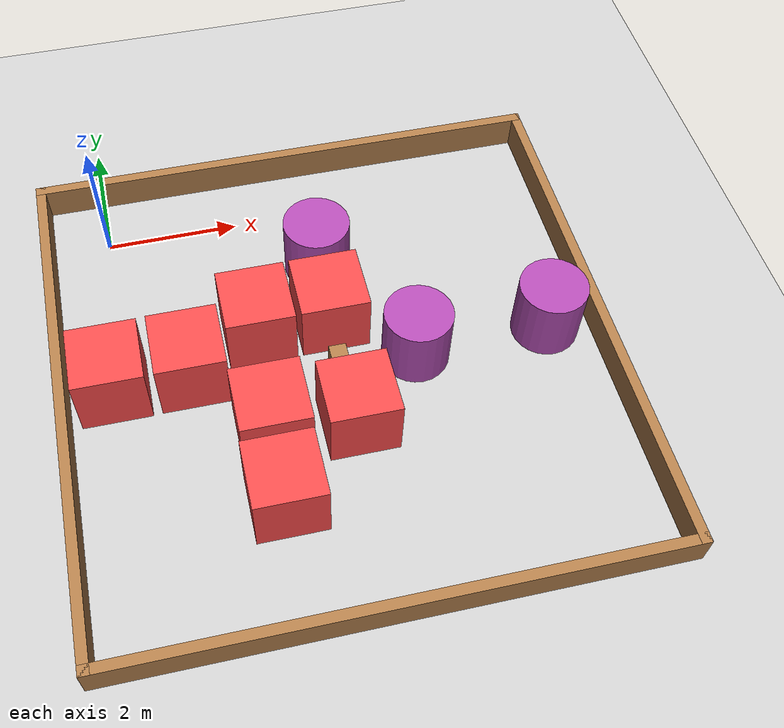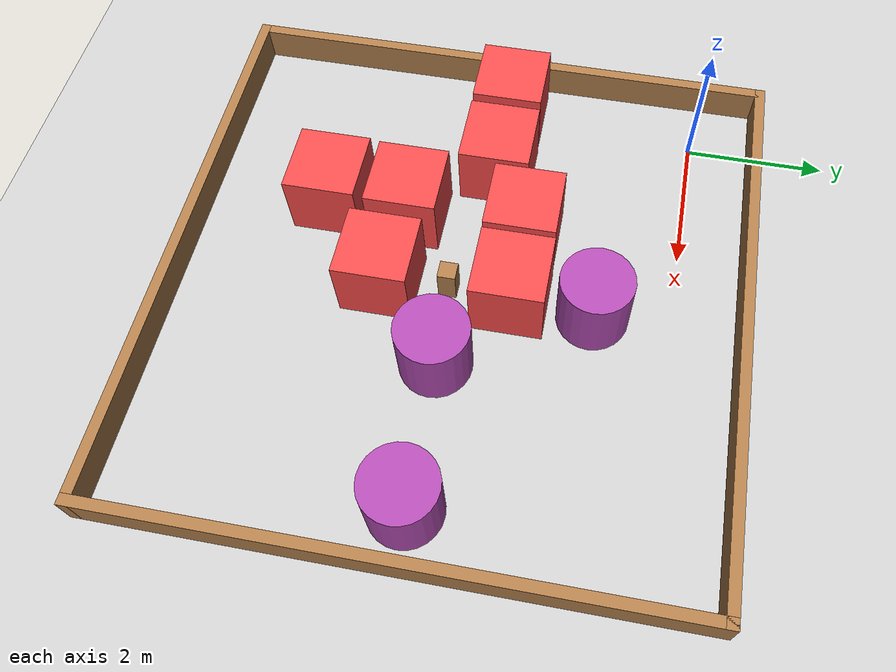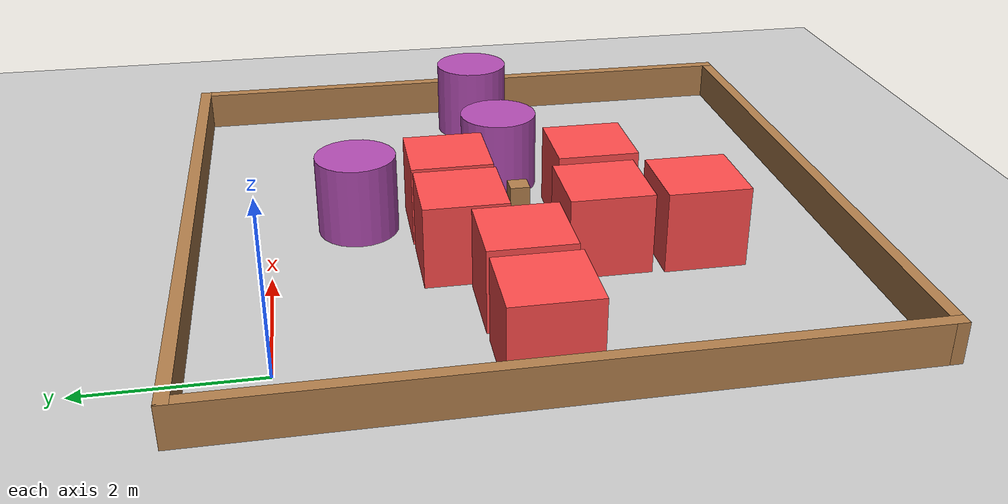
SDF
<sdf version="1.7">
 <world name="default">
  <light name="sun" type="directional">
   <pose>0 0 10 0 -0 0</pose>
   <diffuse>0.8 0.8 0.8 1</diffuse>
   <specular>0.2 0.2 0.2 1</specular>
   <attenuation>
    <range>1000</range>
    <constant>0.9</constant>
    <linear>0.01</linear>
    <quadratic>0.001</quadratic>
   </attenuation>
   <direction>-0.5 0.1 -0.9</direction>
   <spot><inner_angle>0</inner_angle><outer_angle>0</outer_angle><falloff>0</falloff></spot>
  </light>
  <model name="ground_plane">
   <static>1</static>
   <link name="link">
    <collision name="collision">
     <geometry><plane><normal>0 0 1</normal><size>100 100</size></plane></geometry>
     <surface>
      <contact><collide_bitmask>65535</collide_bitmask></contact>
      <friction><ode><mu>100</mu><mu2>50</mu2></ode></friction>
     </surface>
    </collision>
    <visual name="visual">
     <cast_shadows>0</cast_shadows>
     <geometry><plane><normal>0 0 1</normal><size>100 100</size></plane></geometry>
     <material>
      <script><uri>file://media/materials/scripts/gazebo.material</uri><name>Gazebo/Grey</name></script>
     </material>
    </visual>
   </link>
  </model>
  <gravity>0 0 -9.8</gravity>
  <magnetic_field>6e-06 2.3e-05 -4.2e-05</magnetic_field>
  <atmosphere type="adiabatic"/>
  <physics type="ode">
   <max_step_size>0.001</max_step_size>
   <real_time_factor>1</real_time_factor>
   <real_time_update_rate>1000</real_time_update_rate>
  </physics>
  <scene><ambient>0.4 0.4 0.4 1</ambient><background>0.7 0.7 0.7 1</background><shadows>1</shadows></scene>
  <audio><device>default</device></audio>
  <spherical_coordinates>
   <surface_model>EARTH_WGS84</surface_model>
   <latitude_deg>0</latitude_deg>
   <longitude_deg>0</longitude_deg>
   <elevation>0</elevation>
   <heading_deg>0</heading_deg>
  </spherical_coordinates>
  <model name="mcr_testing_map">
   <pose>3.00373 -3.14389 0 0 -0 0</pose>
   <link name="Wall_23">
    <collision name="Wall_23_Collision">
     <geometry><box><size>8 0.15 0.5</size></box></geometry>
     <pose>0 0 0.25 0 -0 0</pose>
    </collision>
    <visual name="Wall_23_Visual">
     <pose>0 0 0.25 0 -0 0</pose>
     <geometry><box><size>8 0.15 0.5</size></box></geometry>
     <material>
      <script><uri>file://media/materials/scripts/gazebo.material</uri><name>Gazebo/Wood</name></script>
      <ambient>1 1 1 1</ambient>
     </material>
     <meta><layer>0</layer></meta>
    </visual>
    <pose>-0 4.092 0 0 -0 0</pose>
   </link>
   <link name="Wall_24">
    <collision name="Wall_24_Collision">
     <geometry><box><size>8 0.15 0.5</size></box></geometry>
     <pose>0 0 0.25 0 -0 0</pose>
    </collision>
    <visual name="Wall_24_Visual">
     <pose>0 0 0.25 0 -0 0</pose>
     <geometry><box><size>8 0.15 0.5</size></box></geometry>
     <material>
      <script><uri>file://media/materials/scripts/gazebo.material</uri><name>Gazebo/Wood</name></script>
      <ambient>1 1 1 1</ambient>
     </material>
     <meta><layer>0</layer></meta>
    </visual>
    <pose>3.925 0.167 0 0 -0 -1.5708</pose>
   </link>
   <link name="Wall_29">
    <collision name="Wall_29_Collision">
     <geometry><box><size>8 0.15 0.5</size></box></geometry>
     <pose>0 0 0.25 0 -0 0</pose>
    </collision>
    <visual name="Wall_29_Visual">
     <pose>0 0 0.25 0 -0 0</pose>
     <geometry><box><size>8 0.15 0.5</size></box></geometry>
     <material>
      <script><uri>file://media/materials/scripts/gazebo.material</uri><name>Gazebo/Wood</name></script>
      <ambient>1 1 1 1</ambient>
     </material>
     <meta><layer>0</layer></meta>
    </visual>
    <pose>-0 -3.758 0 0 -0 3.14159</pose>
   </link>
   <link name="Wall_30">
    <collision name="Wall_30_Collision">
     <geometry><box><size>7.99981 0.15 0.5</size></box></geometry>
     <pose>0 0 0.25 0 -0 0</pose>
    </collision>
    <visual name="Wall_30_Visual">
     <pose>0 0 0.25 0 -0 0</pose>
     <geometry><box><size>7.99981 0.15 0.5</size></box></geometry>
     <material>
      <script><uri>file://media/materials/scripts/gazebo.material</uri><name>Gazebo/Wood</name></script>
      <ambient>1 1 1 1</ambient>
     </material>
     <meta><layer>0</layer></meta>
    </visual>
    <pose>-3.925 0.167 0 0 -0 1.5708</pose>
   </link>
   <link name="Wall_38">
    <collision name="Wall_38_Collision">
     <geometry><box><size>0.25 0.25 0.5</size></box></geometry>
     <pose>0 0 0.25 0 -0 0</pose>
    </collision>
    <visual name="Wall_38_Visual">
     <pose>0 0 0.25 0 -0 0</pose>
     <geometry><box><size>0.25 0.25 0.5</size></box></geometry>
     <material>
      <script><uri>file://media/materials/scripts/gazebo.material</uri><name>Gazebo/Wood</name></script>
      <ambient>1 1 1 1</ambient>
     </material>
     <meta><layer>0</layer></meta>
    </visual>
    <pose>0.013 0.05 0 0 -0 0</pose>
   </link>
   <static>1</static>
  </model>
  <model name="unit_box">
   <link name="link">
    <inertial>
     <mass>1</mass>
     <inertia>
      <ixx>0.166667</ixx>
      <ixy>0</ixy>
      <ixz>0</ixz>
      <iyy>0.166667</iyy>
      <iyz>0</iyz>
      <izz>0.166667</izz>
     </inertia>
    </inertial>
    <visual name="visual">
     <geometry><box><size>1 1 1</size></box></geometry>
     <material>
      <script><name>Gazebo/Grey</name><uri>file://media/materials/scripts/gazebo.material</uri></script>
      <shader type="pixel"><normal_map>__default__</normal_map></shader>
      <ambient>1 0.3 0.3 1</ambient>
      <diffuse>0.7 0.7 0.7 1</diffuse>
      <specular>0.01 0.01 0.01 1</specular>
      <emissive>0 0 0 1</emissive>
     </material>
    </visual>
    <collision name="collision">
     <geometry><box><size>1 1 1</size></box></geometry>
     <surface>
      <friction>
       <ode><mu>1</mu><mu2>1</mu2><fdir1>0 0 0</fdir1><slip1>0</slip1><slip2>0</slip2></ode>
       <torsional>
        <coefficient>1</coefficient>
        <patch_radius>0</patch_radius>
        <surface_radius>0</surface_radius>
        <use_patch_radius>1</use_patch_radius>
        <ode><slip>0</slip></ode>
       </torsional>
      </friction>
      <bounce><restitution_coefficient>0</restitution_coefficient><threshold>1e+06</threshold></bounce>
      <contact>
       <collide_without_contact>0</collide_without_contact>
       <collide_without_contact_bitmask>1</collide_without_contact_bitmask>
       <collide_bitmask>1</collide_bitmask>
       <ode>
        <soft_cfm>0</soft_cfm>
        <soft_erp>0.2</soft_erp>
        <kp>1e+13</kp>
        <kd>1</kd>
        <max_vel>0.01</max_vel>
        <min_depth>0</min_depth>
       </ode>
       <bullet>
        <split_impulse>1</split_impulse>
        <split_impulse_penetration_threshold>-0.01</split_impulse_penetration_threshold>
        <soft_cfm>0</soft_cfm>
        <soft_erp>0.2</soft_erp>
        <kp>1e+13</kp>
        <kd>1</kd>
       </bullet>
      </contact>
     </surface>
    </collision>
   </link>
   <static>0</static>
   <pose>3.07062 -2.20368 0.5 0 -0 0</pose>
  </model>
  <model name="unit_box_clone">
   <link name="link">
    <inertial>
     <mass>1</mass>
     <inertia>
      <ixx>0.166667</ixx>
      <ixy>0</ixy>
      <ixz>0</ixz>
      <iyy>0.166667</iyy>
      <iyz>0</iyz>
      <izz>0.166667</izz>
     </inertia>
    </inertial>
    <visual name="visual">
     <geometry><box><size>1 1 1</size></box></geometry>
     <material>
      <script><name>Gazebo/Grey</name><uri>file://media/materials/scripts/gazebo.material</uri></script>
      <shader type="pixel"><normal_map>__default__</normal_map></shader>
      <ambient>1 0.3 0.3 1</ambient>
      <diffuse>0.7 0.7 0.7 1</diffuse>
      <specular>0.01 0.01 0.01 1</specular>
      <emissive>0 0 0 1</emissive>
     </material>
    </visual>
    <collision name="collision">
     <geometry><box><size>1 1 1</size></box></geometry>
     <surface>
      <friction>
       <ode><mu>1</mu><mu2>1</mu2><fdir1>0 0 0</fdir1><slip1>0</slip1><slip2>0</slip2></ode>
       <torsional>
        <coefficient>1</coefficient>
        <patch_radius>0</patch_radius>
        <surface_radius>0</surface_radius>
        <use_patch_radius>1</use_patch_radius>
        <ode><slip>0</slip></ode>
       </torsional>
      </friction>
      <bounce><restitution_coefficient>0</restitution_coefficient><threshold>1e+06</threshold></bounce>
      <contact>
       <collide_without_contact>0</collide_without_contact>
       <collide_without_contact_bitmask>1</collide_without_contact_bitmask>
       <collide_bitmask>1</collide_bitmask>
       <ode>
        <soft_cfm>0</soft_cfm>
        <soft_erp>0.2</soft_erp>
        <kp>1e+13</kp>
        <kd>1</kd>
        <max_vel>0.01</max_vel>
        <min_depth>0</min_depth>
       </ode>
       <bullet>
        <split_impulse>1</split_impulse>
        <split_impulse_penetration_threshold>-0.01</split_impulse_penetration_threshold>
        <soft_cfm>0</soft_cfm>
        <soft_erp>0.2</soft_erp>
        <kp>1e+13</kp>
        <kd>1</kd>
       </bullet>
      </contact>
     </surface>
    </collision>
   </link>
   <static>0</static>
   <pose>3.08756 -4.01462 0.5 0 -0 0</pose>
  </model>
  <model name="unit_box_clone_clone">
   <link name="link">
    <inertial>
     <mass>1</mass>
     <inertia>
      <ixx>0.166667</ixx>
      <ixy>0</ixy>
      <ixz>0</ixz>
      <iyy>0.166667</iyy>
      <iyz>0</iyz>
      <izz>0.166667</izz>
     </inertia>
    </inertial>
    <visual name="visual">
     <geometry><box><size>1 1 1</size></box></geometry>
     <material>
      <script><name>Gazebo/Grey</name><uri>file://media/materials/scripts/gazebo.material</uri></script>
      <shader type="pixel"><normal_map>__default__</normal_map></shader>
      <ambient>1 0.3 0.3 1</ambient>
      <diffuse>0.7 0.7 0.7 1</diffuse>
      <specular>0.01 0.01 0.01 1</specular>
      <emissive>0 0 0 1</emissive>
     </material>
    </visual>
    <collision name="collision">
     <geometry><box><size>1 1 1</size></box></geometry>
     <surface>
      <friction>
       <ode><mu>1</mu><mu2>1</mu2><fdir1>0 0 0</fdir1><slip1>0</slip1><slip2>0</slip2></ode>
       <torsional>
        <coefficient>1</coefficient>
        <patch_radius>0</patch_radius>
        <surface_radius>0</surface_radius>
        <use_patch_radius>1</use_patch_radius>
        <ode><slip>0</slip></ode>
       </torsional>
      </friction>
      <bounce><restitution_coefficient>0</restitution_coefficient><threshold>1e+06</threshold></bounce>
      <contact>
       <collide_without_contact>0</collide_without_contact>
       <collide_without_contact_bitmask>1</collide_without_contact_bitmask>
       <collide_bitmask>1</collide_bitmask>
       <ode>
        <soft_cfm>0</soft_cfm>
        <soft_erp>0.2</soft_erp>
        <kp>1e+13</kp>
        <kd>1</kd>
        <max_vel>0.01</max_vel>
        <min_depth>0</min_depth>
       </ode>
       <bullet>
        <split_impulse>1</split_impulse>
        <split_impulse_penetration_threshold>-0.01</split_impulse_penetration_threshold>
        <soft_cfm>0</soft_cfm>
        <soft_erp>0.2</soft_erp>
        <kp>1e+13</kp>
        <kd>1</kd>
       </bullet>
      </contact>
     </surface>
    </collision>
   </link>
   <static>0</static>
   <pose>-0.204551 -2.76797 0.5 0 -0 0</pose>
  </model>
  <model name="unit_cylinder">
   <link name="link">
    <inertial>
     <mass>1</mass>
     <inertia><ixx>0.145833</ixx><ixy>0</ixy><ixz>0</ixz><iyy>0.145833</iyy><iyz>0</iyz><izz>0.125</izz></inertia>
    </inertial>
    <visual name="visual">
     <geometry><cylinder><radius>0.5</radius><length>1</length></cylinder></geometry>
     <material>
      <script><name>Gazebo/Grey</name><uri>file://media/materials/scripts/gazebo.material</uri></script>
      <shader type="pixel"><normal_map>__default__</normal_map></shader>
      <ambient>0.7 0.3 0.7 1</ambient>
      <diffuse>0.7 0.7 0.7 1</diffuse>
      <specular>0.01 0.01 0.01 1</specular>
      <emissive>0 0 0 1</emissive>
     </material>
    </visual>
    <collision name="collision">
     <geometry><cylinder><radius>0.5</radius><length>1</length></cylinder></geometry>
     <surface>
      <friction>
       <ode><mu>1</mu><mu2>1</mu2><fdir1>0 0 0</fdir1><slip1>0</slip1><slip2>0</slip2></ode>
       <torsional>
        <coefficient>1</coefficient>
        <patch_radius>0</patch_radius>
        <surface_radius>0</surface_radius>
        <use_patch_radius>1</use_patch_radius>
        <ode><slip>0</slip></ode>
       </torsional>
      </friction>
      <bounce><restitution_coefficient>0</restitution_coefficient><threshold>1e+06</threshold></bounce>
      <contact>
       <collide_without_contact>0</collide_without_contact>
       <collide_without_contact_bitmask>1</collide_without_contact_bitmask>
       <collide_bitmask>1</collide_bitmask>
       <ode>
        <soft_cfm>0</soft_cfm>
        <soft_erp>0.2</soft_erp>
        <kp>1e+13</kp>
        <kd>1</kd>
        <max_vel>0.01</max_vel>
        <min_depth>0</min_depth>
       </ode>
       <bullet>
        <split_impulse>1</split_impulse>
        <split_impulse_penetration_threshold>-0.01</split_impulse_penetration_threshold>
        <soft_cfm>0</soft_cfm>
        <soft_erp>0.2</soft_erp>
        <kp>1e+13</kp>
        <kd>1</kd>
       </bullet>
      </contact>
     </surface>
    </collision>
   </link>
   <static>0</static>
   <pose>3.11987 -1.0743 0.5 0 -0 0</pose>
  </model>
  <model name="unit_cylinder_clone">
   <link name="link">
    <inertial>
     <mass>1</mass>
     <inertia><ixx>0.145833</ixx><ixy>0</ixy><ixz>0</ixz><iyy>0.145833</iyy><iyz>0</iyz><izz>0.125</izz></inertia>
    </inertial>
    <visual name="visual">
     <geometry><cylinder><radius>0.5</radius><length>1</length></cylinder></geometry>
     <material>
      <script><name>Gazebo/Grey</name><uri>file://media/materials/scripts/gazebo.material</uri></script>
      <shader type="pixel"><normal_map>__default__</normal_map></shader>
      <ambient>0.7 0.3 0.7 1</ambient>
      <diffuse>0.7 0.7 0.7 1</diffuse>
      <specular>0.01 0.01 0.01 1</specular>
      <emissive>0 0 0 1</emissive>
     </material>
    </visual>
    <collision name="collision">
     <geometry><cylinder><radius>0.5</radius><length>1</length></cylinder></geometry>
     <surface>
      <friction>
       <ode><mu>1</mu><mu2>1</mu2><fdir1>0 0 0</fdir1><slip1>0</slip1><slip2>0</slip2></ode>
       <torsional>
        <coefficient>1</coefficient>
        <patch_radius>0</patch_radius>
        <surface_radius>0</surface_radius>
        <use_patch_radius>1</use_patch_radius>
        <ode><slip>0</slip></ode>
       </torsional>
      </friction>
      <bounce><restitution_coefficient>0</restitution_coefficient><threshold>1e+06</threshold></bounce>
      <contact>
       <collide_without_contact>0</collide_without_contact>
       <collide_without_contact_bitmask>1</collide_without_contact_bitmask>
       <collide_bitmask>1</collide_bitmask>
       <ode>
        <soft_cfm>0</soft_cfm>
        <soft_erp>0.2</soft_erp>
        <kp>1e+13</kp>
        <kd>1</kd>
        <max_vel>0.01</max_vel>
        <min_depth>0</min_depth>
       </ode>
       <bullet>
        <split_impulse>1</split_impulse>
        <split_impulse_penetration_threshold>-0.01</split_impulse_penetration_threshold>
        <soft_cfm>0</soft_cfm>
        <soft_erp>0.2</soft_erp>
        <kp>1e+13</kp>
        <kd>1</kd>
       </bullet>
      </contact>
     </surface>
    </collision>
   </link>
   <static>0</static>
   <pose>6.18846 -2.97508 0.5 0 -0 0</pose>
  </model>
  <model name="unit_cylinder_clone_clone">
   <link name="link">
    <inertial>
     <mass>1</mass>
     <inertia><ixx>0.145833</ixx><ixy>0</ixy><ixz>0</ixz><iyy>0.145833</iyy><iyz>0</iyz><izz>0.125</izz></inertia>
    </inertial>
    <visual name="visual">
     <geometry><cylinder><radius>0.5</radius><length>1</length></cylinder></geometry>
     <material>
      <script><name>Gazebo/Grey</name><uri>file://media/materials/scripts/gazebo.material</uri></script>
      <shader type="pixel"><normal_map>__default__</normal_map></shader>
      <ambient>0.7 0.3 0.7 1</ambient>
      <diffuse>0.7 0.7 0.7 1</diffuse>
      <specular>0.01 0.01 0.01 1</specular>
      <emissive>0 0 0 1</emissive>
     </material>
    </visual>
    <collision name="collision">
     <geometry><cylinder><radius>0.5</radius><length>1</length></cylinder></geometry>
     <surface>
      <friction>
       <ode><mu>1</mu><mu2>1</mu2><fdir1>0 0 0</fdir1><slip1>0</slip1><slip2>0</slip2></ode>
       <torsional>
        <coefficient>1</coefficient>
        <patch_radius>0</patch_radius>
        <surface_radius>0</surface_radius>
        <use_patch_radius>1</use_patch_radius>
        <ode><slip>0</slip></ode>
       </torsional>
      </friction>
      <bounce><restitution_coefficient>0</restitution_coefficient><threshold>1e+06</threshold></bounce>
      <contact>
       <collide_without_contact>0</collide_without_contact>
       <collide_without_contact_bitmask>1</collide_without_contact_bitmask>
       <collide_bitmask>1</collide_bitmask>
       <ode>
        <soft_cfm>0</soft_cfm>
        <soft_erp>0.2</soft_erp>
        <kp>1e+13</kp>
        <kd>1</kd>
        <max_vel>0.01</max_vel>
        <min_depth>0</min_depth>
       </ode>
       <bullet>
        <split_impulse>1</split_impulse>
        <split_impulse_penetration_threshold>-0.01</split_impulse_penetration_threshold>
        <soft_cfm>0</soft_cfm>
        <soft_erp>0.2</soft_erp>
        <kp>1e+13</kp>
        <kd>1</kd>
       </bullet>
      </contact>
     </surface>
    </collision>
   </link>
   <static>0</static>
   <pose>4.17932 -3.03296 0.5 0 -0 0</pose>
  </model>
  <model name="unit_box_clone_clone_clone">
   <link name="link">
    <inertial>
     <mass>1</mass>
     <inertia>
      <ixx>0.166667</ixx>
      <ixy>0</ixy>
      <ixz>0</ixz>
      <iyy>0.166667</iyy>
      <iyz>0</iyz>
      <izz>0.166667</izz>
     </inertia>
    </inertial>
    <visual name="visual">
     <geometry><box><size>1 1 1</size></box></geometry>
     <material>
      <script><name>Gazebo/Grey</name><uri>file://media/materials/scripts/gazebo.material</uri></script>
      <shader type="pixel"><normal_map>__default__</normal_map></shader>
      <ambient>1 0.3 0.3 1</ambient>
      <diffuse>0.7 0.7 0.7 1</diffuse>
      <specular>0.01 0.01 0.01 1</specular>
      <emissive>0 0 0 1</emissive>
     </material>
    </visual>
    <collision name="collision">
     <geometry><box><size>1 1 1</size></box></geometry>
     <surface>
      <friction>
       <ode><mu>1</mu><mu2>1</mu2><fdir1>0 0 0</fdir1><slip1>0</slip1><slip2>0</slip2></ode>
       <torsional>
        <coefficient>1</coefficient>
        <patch_radius>0</patch_radius>
        <surface_radius>0</surface_radius>
        <use_patch_radius>1</use_patch_radius>
        <ode><slip>0</slip></ode>
       </torsional>
      </friction>
      <bounce><restitution_coefficient>0</restitution_coefficient><threshold>1e+06</threshold></bounce>
      <contact>
       <collide_without_contact>0</collide_without_contact>
       <collide_without_contact_bitmask>1</collide_without_contact_bitmask>
       <collide_bitmask>1</collide_bitmask>
       <ode>
        <soft_cfm>0</soft_cfm>
        <soft_erp>0.2</soft_erp>
        <kp>1e+13</kp>
        <kd>1</kd>
        <max_vel>0.01</max_vel>
        <min_depth>0</min_depth>
       </ode>
       <bullet>
        <split_impulse>1</split_impulse>
        <split_impulse_penetration_threshold>-0.01</split_impulse_penetration_threshold>
        <soft_cfm>0</soft_cfm>
        <soft_erp>0.2</soft_erp>
        <kp>1e+13</kp>
        <kd>1</kd>
       </bullet>
      </contact>
     </surface>
    </collision>
   </link>
   <static>0</static>
   <pose>0.925355 -2.75751 0.5 0 -0 0</pose>
  </model>
  <model name="unit_box_clone_clone_clone_clone">
   <link name="link">
    <inertial>
     <mass>1</mass>
     <inertia>
      <ixx>0.166667</ixx>
      <ixy>0</ixy>
      <ixz>0</ixz>
      <iyy>0.166667</iyy>
      <iyz>0</iyz>
      <izz>0.166667</izz>
     </inertia>
    </inertial>
    <visual name="visual">
     <geometry><box><size>1 1 1</size></box></geometry>
     <material>
      <script><name>Gazebo/Grey</name><uri>file://media/materials/scripts/gazebo.material</uri></script>
      <shader type="pixel"><normal_map>__default__</normal_map></shader>
      <ambient>1 0.3 0.3 1</ambient>
      <diffuse>0.7 0.7 0.7 1</diffuse>
      <specular>0.01 0.01 0.01 1</specular>
      <emissive>0 0 0 1</emissive>
     </material>
    </visual>
    <collision name="collision">
     <geometry><box><size>1 1 1</size></box></geometry>
     <surface>
      <friction>
       <ode><mu>1</mu><mu2>1</mu2><fdir1>0 0 0</fdir1><slip1>0</slip1><slip2>0</slip2></ode>
       <torsional>
        <coefficient>1</coefficient>
        <patch_radius>0</patch_radius>
        <surface_radius>0</surface_radius>
        <use_patch_radius>1</use_patch_radius>
        <ode><slip>0</slip></ode>
       </torsional>
      </friction>
      <bounce><restitution_coefficient>0</restitution_coefficient><threshold>1e+06</threshold></bounce>
      <contact>
       <collide_without_contact>0</collide_without_contact>
       <collide_without_contact_bitmask>1</collide_without_contact_bitmask>
       <collide_bitmask>1</collide_bitmask>
       <ode>
        <soft_cfm>0</soft_cfm>
        <soft_erp>0.2</soft_erp>
        <kp>1e+13</kp>
        <kd>1</kd>
        <max_vel>0.01</max_vel>
        <min_depth>0</min_depth>
       </ode>
       <bullet>
        <split_impulse>1</split_impulse>
        <split_impulse_penetration_threshold>-0.01</split_impulse_penetration_threshold>
        <soft_cfm>0</soft_cfm>
        <soft_erp>0.2</soft_erp>
        <kp>1e+13</kp>
        <kd>1</kd>
       </bullet>
      </contact>
     </surface>
    </collision>
   </link>
   <static>0</static>
   <pose>1.90227 -3.88672 0.5 0 -0 0</pose>
  </model>
  <model name="unit_box_clone_clone_clone_clone_clone">
   <link name="link">
    <inertial>
     <mass>1</mass>
     <inertia>
      <ixx>0.166667</ixx>
      <ixy>0</ixy>
      <ixz>0</ixz>
      <iyy>0.166667</iyy>
      <iyz>0</iyz>
      <izz>0.166667</izz>
     </inertia>
    </inertial>
    <visual name="visual">
     <geometry><box><size>1 1 1</size></box></geometry>
     <material>
      <script><name>Gazebo/Grey</name><uri>file://media/materials/scripts/gazebo.material</uri></script>
      <shader type="pixel"><normal_map>__default__</normal_map></shader>
      <ambient>1 0.3 0.3 1</ambient>
      <diffuse>0.7 0.7 0.7 1</diffuse>
      <specular>0.01 0.01 0.01 1</specular>
      <emissive>0 0 0 1</emissive>
     </material>
    </visual>
    <collision name="collision">
     <geometry><box><size>1 1 1</size></box></geometry>
     <surface>
      <friction>
       <ode><mu>1</mu><mu2>1</mu2><fdir1>0 0 0</fdir1><slip1>0</slip1><slip2>0</slip2></ode>
       <torsional>
        <coefficient>1</coefficient>
        <patch_radius>0</patch_radius>
        <surface_radius>0</surface_radius>
        <use_patch_radius>1</use_patch_radius>
        <ode><slip>0</slip></ode>
       </torsional>
      </friction>
      <bounce><restitution_coefficient>0</restitution_coefficient><threshold>1e+06</threshold></bounce>
      <contact>
       <collide_without_contact>0</collide_without_contact>
       <collide_without_contact_bitmask>1</collide_without_contact_bitmask>
       <collide_bitmask>1</collide_bitmask>
       <ode>
        <soft_cfm>0</soft_cfm>
        <soft_erp>0.2</soft_erp>
        <kp>1e+13</kp>
        <kd>1</kd>
        <max_vel>0.01</max_vel>
        <min_depth>0</min_depth>
       </ode>
       <bullet>
        <split_impulse>1</split_impulse>
        <split_impulse_penetration_threshold>-0.01</split_impulse_penetration_threshold>
        <soft_cfm>0</soft_cfm>
        <soft_erp>0.2</soft_erp>
        <kp>1e+13</kp>
        <kd>1</kd>
       </bullet>
      </contact>
     </surface>
    </collision>
   </link>
   <static>0</static>
   <pose>1.87121 -5.02715 0.5 0 -0 0</pose>
  </model>
  <model name="unit_box_clone_clone_clone_clone_0">
   <link name="link">
    <inertial>
     <mass>1</mass>
     <inertia>
      <ixx>0.166667</ixx>
      <ixy>0</ixy>
      <ixz>0</ixz>
      <iyy>0.166667</iyy>
      <iyz>0</iyz>
      <izz>0.166667</izz>
     </inertia>
    </inertial>
    <visual name="visual">
     <geometry><box><size>1 1 1</size></box></geometry>
     <material>
      <script><name>Gazebo/Grey</name><uri>file://media/materials/scripts/gazebo.material</uri></script>
      <shader type="pixel"><normal_map>__default__</normal_map></shader>
      <ambient>1 0.3 0.3 1</ambient>
      <diffuse>0.7 0.7 0.7 1</diffuse>
      <specular>0.01 0.01 0.01 1</specular>
      <emissive>0 0 0 1</emissive>
     </material>
    </visual>
    <collision name="collision">
     <geometry><box><size>1 1 1</size></box></geometry>
     <surface>
      <friction>
       <ode><mu>1</mu><mu2>1</mu2><fdir1>0 0 0</fdir1><slip1>0</slip1><slip2>0</slip2></ode>
       <torsional>
        <coefficient>1</coefficient>
        <patch_radius>0</patch_radius>
        <surface_radius>0</surface_radius>
        <use_patch_radius>1</use_patch_radius>
        <ode><slip>0</slip></ode>
       </torsional>
      </friction>
      <bounce><restitution_coefficient>0</restitution_coefficient><threshold>1e+06</threshold></bounce>
      <contact>
       <collide_without_contact>0</collide_without_contact>
       <collide_without_contact_bitmask>1</collide_without_contact_bitmask>
       <collide_bitmask>1</collide_bitmask>
       <ode>
        <soft_cfm>0</soft_cfm>
        <soft_erp>0.2</soft_erp>
        <kp>1e+13</kp>
        <kd>1</kd>
        <max_vel>0.01</max_vel>
        <min_depth>0</min_depth>
       </ode>
       <bullet>
        <split_impulse>1</split_impulse>
        <split_impulse_penetration_threshold>-0.01</split_impulse_penetration_threshold>
        <soft_cfm>0</soft_cfm>
        <soft_erp>0.2</soft_erp>
        <kp>1e+13</kp>
        <kd>1</kd>
       </bullet>
      </contact>
     </surface>
    </collision>
   </link>
   <static>0</static>
   <pose>1.99002 -2.21422 0.5 0 -0 0</pose>
  </model>
 </world>
</sdf>
